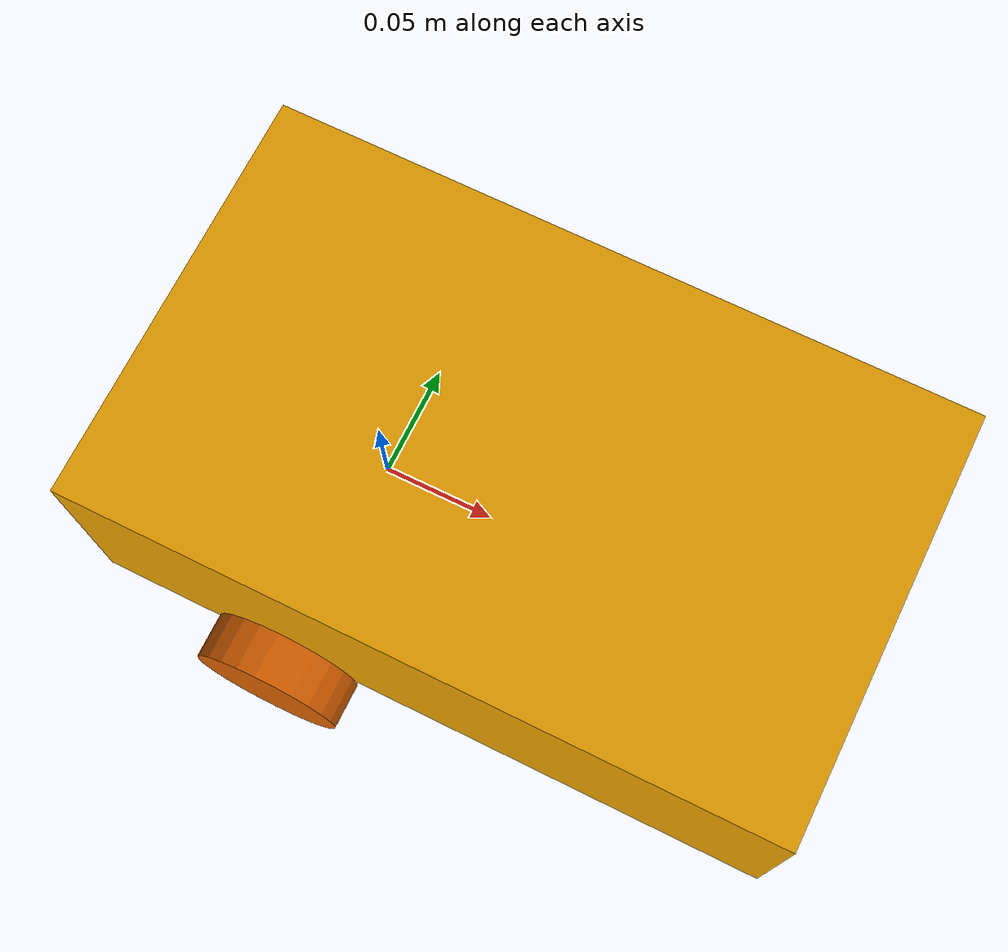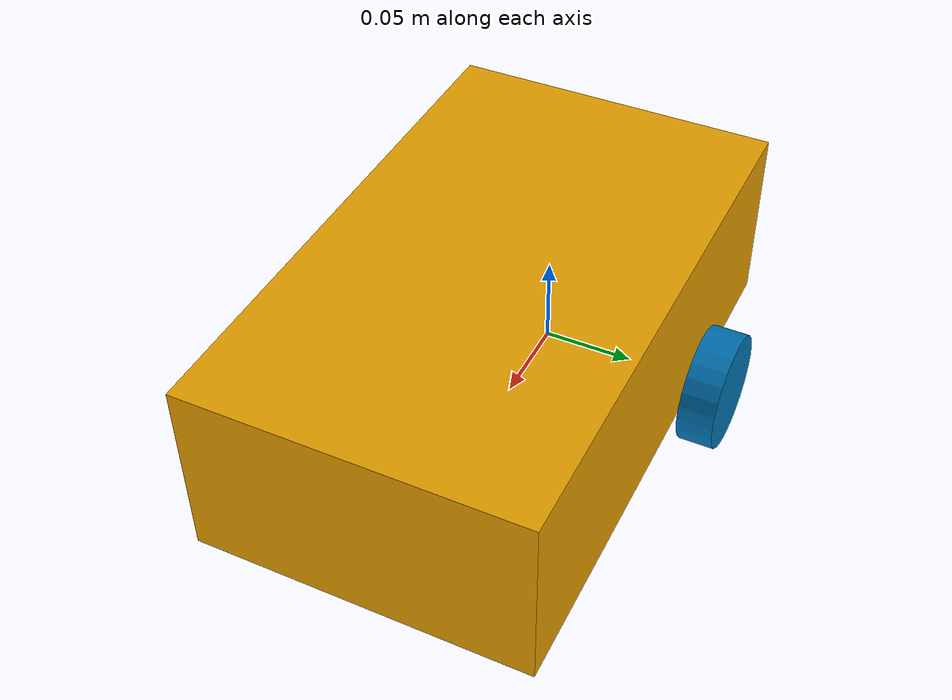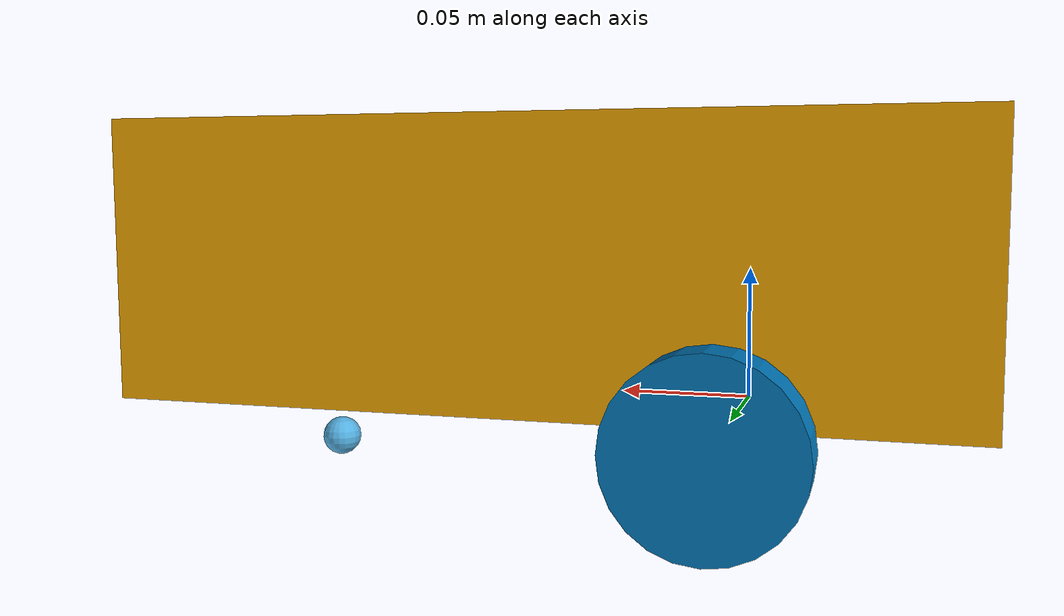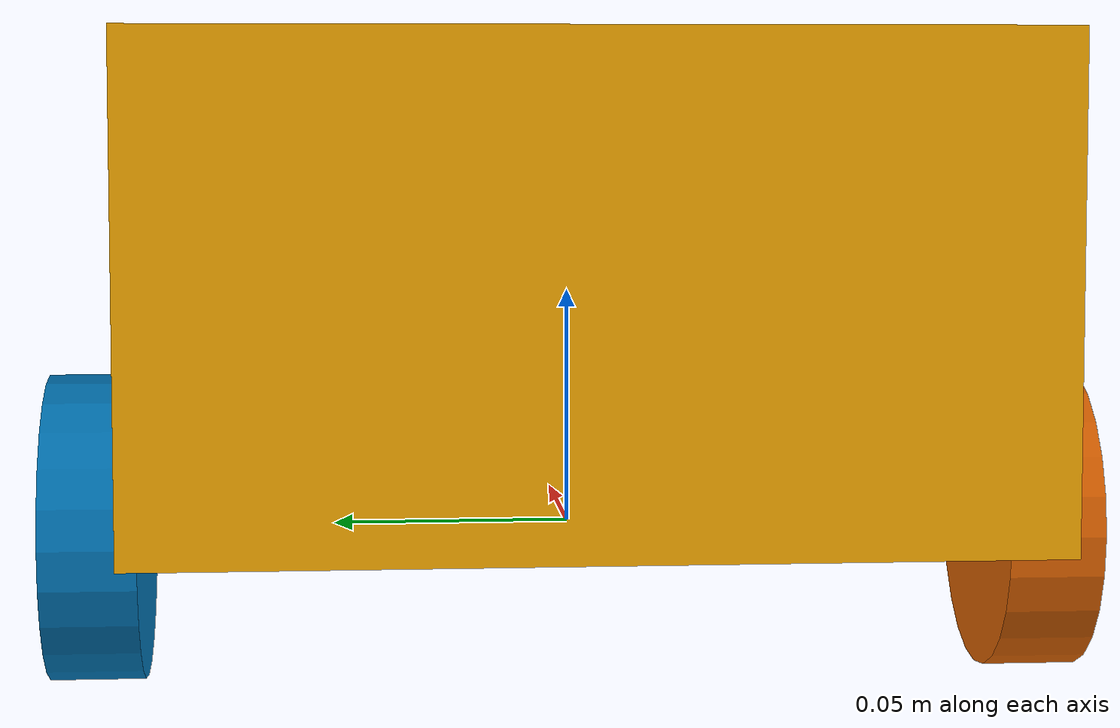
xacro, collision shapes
<?xml version="1.0"?>

<robot name="lmr1"
       xmlns:xacro="http://www.ros.org/wiki/xacro">

    <!-- instantiate macros and properties -->
    <xacro:include filename="$(find lmr1_description)/urdf/common/properties.xacro"/>
    <xacro:include filename="$(find lmr1_description)/urdf/common/inertials.xacro"/>
    <xacro:include filename="$(find lmr1_description)/urdf/components/wheel.xacro"/>

    <!-- instantiate fixed components -->
    <xacro:include filename="$(find lmr1_description)/urdf/components/base.xacro"/>
    <xacro:include filename="$(find lmr1_description)/urdf/components/caster.xacro"/>
    <xacro:include filename="$(find lmr1_description)/urdf/components/sensors.xacro"/>

    <!-- left wheel -->
    <xacro:wheel
        prefix="left"
        parent="base_link"
        xyz="0 ${wheel_offset_y} ${wheel_offset_z}"
        rpy="-${PI/2} 0 0"
        mesh_file="package://lmr1_description/meshes/wheel_light.dae"
        axis="0 0 1"/>

    <!-- right wheel -->
    <xacro:wheel
        prefix="right"
        parent="base_link"
        xyz="0 -${wheel_offset_y} ${wheel_offset_z}"
        rpy="${PI/2} 0 0"
        mesh_file="package://lmr1_description/meshes/wheel_light.dae"
        axis="0 0 -1"/>

    <gazebo>
        <plugin name="diff_drive_controller"
                filename="libgazebo_ros_diff_drive.so">

            <!-- ROS namespace -->
            <robotNamespace>/lmr1</robotNamespace>

            <!-- wheels -->
            <leftJoint>left_wheel_joint</leftJoint>
            <rightJoint>right_wheel_joint</rightJoint>

            <!-- geometry -->
            <wheelSeparation>0.2</wheelSeparation>
            <wheelDiameter>0.065</wheelDiameter>

            <!-- dynamics -->
            <wheelTorque>5</wheelTorque>
            <wheelAcceleration>10</wheelAcceleration>

            <!-- topics -->
            <commandTopic>cmd_vel</commandTopic>
            <odometryTopic>odom</odometryTopic>

            <!-- frames -->
            <odometryFrame>odom</odometryFrame>
            <robotBaseFrame>base_link</robotBaseFrame>

            <!-- TF -->
            <publishWheelTF>false</publishWheelTF>
            <publishWheelJointState>false</publishWheelJointState>
            <publishOdomTF>true</publishOdomTF>

            <!-- odometry -->
            <odometrySource>world</odometrySource>

            <!-- debug -->
            <rosDebugLevel>na</rosDebugLevel>

            <!-- update -->
            <updateRate>50</updateRate>

        </plugin>
    </gazebo>

    <gazebo reference="left_wheel_link">
        <mu1>2.0</mu1>
        <mu2>2.0</mu2>
        <kp>1000000.0</kp>
        <kd>100.0</kd>
    </gazebo>

    <gazebo reference="right_wheel_link">
        <mu1>2.0</mu1>
        <mu2>2.0</mu2>
        <kp>1000000.0</kp>
        <kd>100.0</kd>
    </gazebo>

    <gazebo reference="caster_wheel_link">
        <mu1>0.6</mu1>
        <mu2>0.6</mu2>
        <kp>100000.0</kp>
        <kd>10.0</kd>
    </gazebo>

    <gazebo reference="lidar_link">
        <sensor type="ray" name="ld19_lidar">
            <pose>0 0 0 0 0 0</pose>

            <visualize>false</visualize>

            <update_rate>10</update_rate>

            <ray>
                <scan>
                    <horizontal>
                        <samples>450</samples>
                        <resolution>1</resolution>

                        <min_angle>-3.141592</min_angle>
                        <max_angle>3.141592</max_angle>
                    </horizontal>
                </scan>

                <range>
                    <min>0.2</min>
                    <max>12.0</max>

                    <resolution>0.01</resolution>
                </range>

                <noise>
                    <type>gaussian</type>
                    <mean>0.0</mean>
                    <stddev>0.01</stddev>
                </noise>
            </ray>

            <plugin name="gazebo_ros_laser"
                    filename="libgazebo_ros_laser.so">

                <topicName>/scan</topicName>
                <frameName>lidar_link</frameName>
            </plugin>

        </sensor>

    </gazebo>

  <gazebo reference="imu_link">
        <gravity>true</gravity>
        <sensor name="imu_sensor" type="imu">
            <pose>0 0 0 0 0 0</pose>

            <always_on>true</always_on>
            <visualize>false</visualize>

            <update_rate>100</update_rate>

            <plugin filename="libgazebo_ros_imu_sensor.so" name="imu_plugin">
                <topicName>imu</topicName>
                <bodyName>imu_link</bodyName>

                <updateRateHZ>100.0</updateRateHZ>
                <gaussianNoise>0.002</gaussianNoise>

                <frameName>imu_link</frameName>

                <initialOrientationAsReference>false</initialOrientationAsReference>
            </plugin>
        </sensor>
  </gazebo>

</robot>

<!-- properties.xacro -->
<robot xmlns:xacro="http://www.ros.org/wiki/xacro">

    <!-- Constants -->

    <xacro:property name="PI" value="3.14159265359"/>

    <!-- Base Dimensions -->

    <!-- meters -->
    <xacro:property name="base_length" value="0.30"/>
    <xacro:property name="base_width"  value="0.18"/>
    <xacro:property name="base_height" value="0.10"/>

    <xacro:property name="base_mass" value="2.0"/>

    <!-- base visual/collision offset -->
    <xacro:property name="base_offset_x" value="0.065"/>
    <xacro:property name="base_offset_y" value="0.0"/>
    <xacro:property name="base_offset_z" value="0.055"/>

    <!-- Wheel Dimensions -->

    <xacro:property name="wheel_radius" value="0.0325"/>
    <xacro:property name="wheel_width"  value="0.020"/>

    <xacro:property name="wheel_mass" value="0.150"/>

    <!-- wheel locations -->
    <xacro:property name="wheel_offset_x" value="0.0"/>
    <xacro:property name="wheel_offset_y" value="0.1"/>
    <xacro:property name="wheel_offset_z" value="0.0"/>

    <!-- Caster -->

    <xacro:property name="caster_radius" value="0.008"/>

    <xacro:property name="caster_mass" value="0.05"/>

    <xacro:property name="caster_offset_x" value="0.175"/>
    <xacro:property name="caster_offset_y" value="0.0"/>
    <xacro:property name="caster_offset_z" value="-0.0255"/>

    <!-- Sensors -->

    <xacro:property name="imu_offset_x" value="-0.06"/>
    <xacro:property name="imu_offset_y" value="0.0"/>
    <xacro:property name="imu_offset_z" value="0.06"/>

    <xacro:property name="lidar_offset_x" value="0.04"/>
    <xacro:property name="lidar_offset_y" value="0.0"/>
    <xacro:property name="lidar_offset_z" value="0.12"/>

</robot>

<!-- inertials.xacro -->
<robot xmlns:xacro="http://www.ros.org/wiki/xacro">

    <!-- Box inertia -->

    <xacro:macro name="box_inertia"
                 params="mass length width height">

        <inertia
            ixx="${(1.0/12.0) * mass * (height*height + width*width)}"
            ixy="0.0"
            ixz="0.0"
            iyy="${(1.0/12.0) * mass * (length*length + height*height)}"
            iyz="0.0"
            izz="${(1.0/12.0) * mass * (length*length + width*width)}"/>

    </xacro:macro>

    <!-- Solid Sphere Inertia -->

    <xacro:macro name="sphere_inertia"
                 params="mass radius">

        <inertia
            ixx="${(2.0/5.0) * mass * radius * radius}"
            ixy="0.0"
            ixz="0.0"
            iyy="${(2.0/5.0) * mass * radius * radius}"
            iyz="0.0"
            izz="${(2.0/5.0) * mass * radius * radius}" />

    </xacro:macro>

    <!-- Cylinder inertia -->
    <!-- cylinder aligned with z-axis -->

    <xacro:macro name="cylinder_inertia"
                 params="mass radius length">

        <inertia
            ixx="${(1.0/12.0) * mass * (3*radius*radius + length*length)}"
            ixy="0.0"
            ixz="0.0"
            iyy="${(1.0/12.0) * mass * (3*radius*radius + length*length)}"
            iyz="0.0"
            izz="${0.5 * mass * radius * radius}"/>

    </xacro:macro>

</robot>

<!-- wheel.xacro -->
<robot xmlns:xacro="http://www.ros.org/wiki/xacro">

    <xacro:macro name="wheel"
                 params="
                 prefix
                 parent
                 xyz
                 rpy
                 mesh_file
                 axis">

        <!-- Wheel Link -->

        <link name="${prefix}_wheel_link">

            <!-- Inertial -->

            <inertial>

                <origin xyz="0 0 0" rpy="0 0 0"/>

                <mass value="${wheel_mass}"/>

                <xacro:cylinder_inertia
                    mass="${wheel_mass}"
                    radius="${wheel_radius}"
                    length="${wheel_width}"/>

            </inertial>

            <!-- Visual -->

            <visual>

                <origin xyz="0 0 0" rpy="0 -${PI/2} 0"/>

                <geometry>
                    <mesh filename="${mesh_file}"/>
                </geometry>

            </visual>

            <!-- Collision -->

            <collision>

                <origin xyz="0 0 0"
                        rpy="0 0 0"/>

                <geometry>
                    <cylinder
                        radius="${wheel_radius}"
                        length="${wheel_width}"/>
                </geometry>

            </collision>

        </link>

        <!-- Wheel Joint -->

        <joint name="${prefix}_wheel_joint"
               type="continuous">

            <origin xyz="${xyz}"
                    rpy="${rpy}"/>

            <parent link="${parent}"/>
            <child link="${prefix}_wheel_link"/>

            <axis xyz="${axis}"/>

        </joint>

    </xacro:macro>

</robot>

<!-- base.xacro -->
<robot xmlns:xacro="http://www.ros.org/wiki/xacro">

    <link name="base_link">

        <inertial>

            <origin
                xyz="${base_offset_x}
                     ${base_offset_y}
                     ${base_offset_z}"
                rpy="0 0 0"/>

            <mass value="${base_mass}"/>

            <xacro:box_inertia
                mass="${base_mass}"
                length="${base_length}"
                width="${base_width}"
                height="${base_height}"/>

        </inertial>

        <!-- Visual -->

        <visual>

            <origin
                xyz="0 0 0"
                rpy="0 0 0"/>

            <geometry>

                <mesh filename="package://lmr1_description/meshes/base_light.dae"/>

            </geometry>

        </visual>

        <!-- Collision -->

        <collision>

            <origin
                xyz="${base_offset_x}
                     ${base_offset_y}
                     ${base_offset_z}"
                rpy="0 0 0"/>

            <geometry>

                <box size="${base_length}
                           ${base_width}
                           ${base_height}"/>

            </geometry>

        </collision>

    </link>

</robot>

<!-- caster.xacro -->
<robot xmlns:xacro="http://www.ros.org/wiki/xacro">

    <link name="caster_wheel_link">
        <inertial>
            <origin xyz="0 0 0" rpy="0 0 0"/>

            <mass value="${caster_mass}"/>

            <xacro:sphere_inertia
                mass="${caster_mass}"
                radius="${caster_radius}"/>
        </inertial>

        <collision>
            <origin xyz="0 0 0" rpy="0 0 0"/>

            <geometry>
                <sphere radius="${caster_radius}"/>
            </geometry>
        </collision>

    </link>

    <joint name="caster_wheel_joint"
           type="fixed">

        <origin
            xyz="${caster_offset_x}
                 ${caster_offset_y}
                 ${caster_offset_z}"
            rpy="0 0 0"/>

        <parent link="base_link"/>
        <child link="caster_wheel_link"/>
    </joint>

</robot>

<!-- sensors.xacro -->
<robot xmlns:xacro="http://www.ros.org/wiki/xacro">

    <!-- IMU -->

    <link name="imu_link">
        <collision>
            <geometry>
                <box size="0.01 0.01 0.01"/>
            </geometry>
        </collision>

        <inertial>
            <origin xyz="0 0 0" rpy="0 0 0"/>

            <mass value="0.01"/>

            <inertia
                ixx="0.000001"
                ixy="0.0"
                ixz="0.0"
                iyy="0.000001"
                iyz="0.0"
                izz="0.000001"/>
        </inertial>
    </link>

    <joint name="imu_joint"
           type="fixed">

        <origin
            xyz="${imu_offset_x}
                 ${imu_offset_y}
                 ${imu_offset_z}"
            rpy="0 0 0"/>

        <parent link="base_link"/>
        <child link="imu_link"/>

    </joint>

    <!-- LiDAR -->

    <link name="lidar_link"/>

    <joint name="lidar_joint"
           type="fixed">

        <origin
            xyz="${lidar_offset_x}
                 ${lidar_offset_y}
                 ${lidar_offset_z}"
            rpy="0 0 0"/>

        <parent link="base_link"/>
        <child link="lidar_link"/>

    </joint>

</robot>
